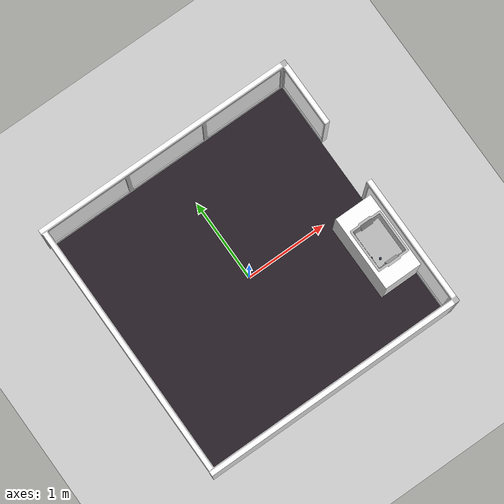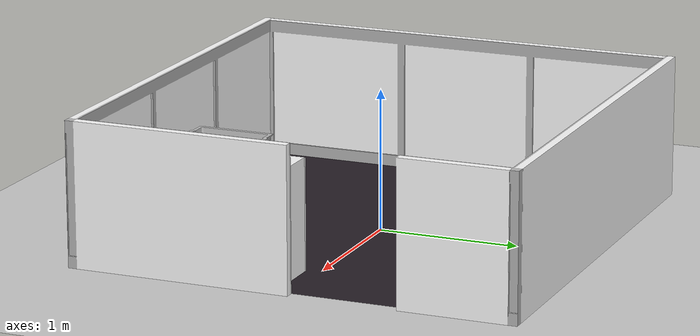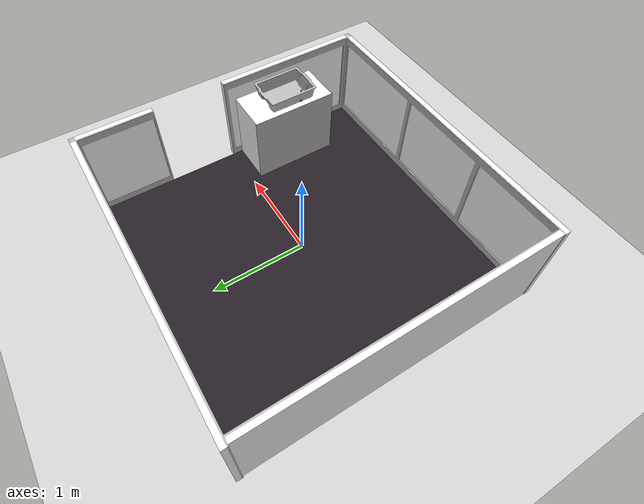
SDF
<?xml version="1.0" ?>
<sdf version="1.4">
  <world name="default">

    <include>
      <uri>model://ground_plane</uri>
      <pose>0 0 -0.005 0 0 0</pose>
    </include>

    <include>
      <uri>model://fetchit_arena</uri>
      <name>fetchit_arena1</name>
      <pose>0 0 0 0 0 0</pose>
    </include>

    <include>
      <uri>model://fetchit_table_em</uri>
      <name>fetchit_table_em1</name>
      <pose>1.28714 -0.565 0.0 0 0 -1.57</pose>
    </include>

    <include>
      <uri>model://screw_bin</uri>
      <name>screw_bin</name>
      <pose>1.273518 -0.580070 0.791994 0 0 -1.570000</pose>
    </include>

    <include>
      <uri>model://gearbox_bolt_grey</uri>
      <name>gearbox_bolt_grey1</name>
      <pose>1.19481 -0.727808 0.802789 0 0 0</pose>
    </include>

    <include>
      <uri>model://gearbox_bolt_grey</uri>
      <name>gearbox_bolt_grey2</name>
      <pose>1.11789 -0.669909 0.802789 0 0 0</pose>
    </include>

    <light name='user_point_light_0' type='point'>
      <pose frame=''>1.0 1.0 3.5 0 0 0</pose>
      <diffuse>0.7 0.7 0.7 1</diffuse>
      <specular>0.1 0.1 0.1 1</specular>
      <attenuation>
        <range>10</range>
        <constant>0.5</constant>
        <linear>0.01</linear>
        <quadratic>0.001</quadratic>
      </attenuation>
      <cast_shadows>0</cast_shadows>
      <direction>0 0 -1</direction>
    </light>

    <light name='user_point_light_1' type='point'>
      <pose frame=''>-1.0 1.0 3.5 0 0 0</pose>
      <diffuse>0.7 0.7 0.7 1</diffuse>
      <specular>0.1 0.1 0.1 1</specular>
      <attenuation>
        <range>10</range>
        <constant>0.5</constant>
        <linear>0.01</linear>
        <quadratic>0.001</quadratic>
      </attenuation>
      <cast_shadows>0</cast_shadows>
      <direction>0 0 -1</direction>
    </light>

    <light name='user_point_light_2' type='point'>
      <pose frame=''>-1.0 -1.0 3.5 0 0 0</pose>
      <diffuse>0.7 0.7 0.7 1</diffuse>
      <specular>0.1 0.1 0.1 1</specular>
      <attenuation>
        <range>10</range>
        <constant>0.5</constant>
        <linear>0.01</linear>
        <quadratic>0.001</quadratic>
      </attenuation>
      <cast_shadows>0</cast_shadows>
      <direction>0 0 -1</direction>
    </light>

    <light name='user_point_light_3' type='point'>
      <pose frame=''>1.0 -1.0 3.5 0 0 0</pose>
      <diffuse>0.7 0.7 0.7 1</diffuse>
      <specular>0.1 0.1 0.1 1</specular>
      <attenuation>
        <range>10</range>
        <constant>0.5</constant>
        <linear>0.01</linear>
        <quadratic>0.001</quadratic>
      </attenuation>
      <cast_shadows>0</cast_shadows>
      <direction>0 0 -1</direction>
    </light>

  </world>
</sdf>

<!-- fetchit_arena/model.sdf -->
<sdf version='1.4'>
  <model name="fetchit_simple_env">
      <static>1</static>
      <link name='link'>
        <visual name='visual'>
          <geometry>
            <mesh>
              <uri>model://fetchit_arena/meshes/fetchit_arena1.dae</uri>
              <scale>1 1 1</scale>
            </mesh>
          </geometry>
        </visual>
        <collision name='collision'>
          <geometry>
            <mesh>
              <uri>model://fetchit_arena/meshes/fetchit_arena1.dae</uri>
              <scale>1 1 1</scale>
            </mesh>
          </geometry>
          <surface>
            <friction>
              <ode>
                <mu>30.0</mu>
                <mu2>30.0</mu2>
              </ode>
            </friction>
            <contact>
              <ode>
                <soft_cfm>0</soft_cfm>
    	          <soft_erp>0.2</soft_erp>
    	          <kp>1e+13</kp>
    	          <kd>1</kd>
    	          <max_vel>0.01</max_vel>
    	          <min_depth>0</min_depth>
              </ode>
            </contact>
          </surface>
        </collision>
        <velocity_decay>
          <linear>0.000000</linear>
          <angular>0.000000</angular>
        </velocity_decay>
        <self_collide>0</self_collide>
        <kinematic>0</kinematic>
        <gravity>1</gravity>
      </link>
  </model>
</sdf>

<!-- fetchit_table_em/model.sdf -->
<sdf version='1.4'>
  <model name="fetchit_table_em">
      <static>1</static>
      <link name='link'>
        <inertial>
          <mass>0.0592855</mass>
          <inertia>
            <ixx>2.31818050784e-05</ixx>
            <ixy>0.000000</ixy>
            <ixz>0.000000</ixz>
            <iyy>2.31851837098e-05</iyy>
            <iyz>0.000000</iyz>
            <izz>8.88944636856e-06</izz>
          </inertia>
        </inertial>
        <collision name='collision'>
          <geometry>
            <mesh>
              <uri>model://fetchit_table_em/meshes/simple_table.stl</uri>
              <scale>1 1 1</scale>
            </mesh>
          </geometry>
          <surface>
            <friction>
              <ode>
                <mu>30.0</mu>
                <mu2>30.0</mu2>
              </ode>
            </friction>
          </surface>
        </collision>
        <visual name='visual'>
          <geometry>
            <mesh>
              <uri>model://fetchit_table_em/meshes/table_EM.dae</uri>
              <scale>1 1 1</scale>
            </mesh>
          </geometry>
        </visual>
        <velocity_decay>
          <linear>0.000000</linear>
          <angular>0.000000</angular>
        </velocity_decay>
        <self_collide>0</self_collide>
        <kinematic>0</kinematic>
        <gravity>1</gravity>
      </link>
  </model>
</sdf>

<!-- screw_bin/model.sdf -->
<sdf version='1.4'>
  <model name="screw_bin">
      <static>1</static>
      <link name='link'>
        <inertial>
          <mass>0.0189132</mass>
          <inertia>
            <ixx>3.36060179959e-06</ixx>
            <ixy>0.000000</ixy>
            <ixz>0.000000</ixz>
            <iyy>3.36060179959e-06</iyy>
            <iyz>0.000000</iyz>
            <izz>1.34975977923e-06</izz>
          </inertia>
        </inertial>
        <collision name='collision'>
          <geometry>
            <mesh>
              <uri>model://screw_bin/meshes/screw_bin.stl</uri>
              <scale>1 1 1</scale>
            </mesh>
          </geometry>
          <surface>
            <friction>
              <ode>
                <mu>30.0</mu>
                <mu2>30.0</mu2>
              </ode>
            </friction>
          </surface>
        </collision>
        <visual name='visual'>
          <geometry>
            <mesh>
              <uri>model://screw_bin/meshes/screw_bin.dae</uri>
              <scale>1 1 1</scale>
            </mesh>
          </geometry>
        </visual>
        <velocity_decay>
          <linear>0.000000</linear>
          <angular>0.000000</angular>
        </velocity_decay>
        <self_collide>0</self_collide>
        <kinematic>0</kinematic>
        <gravity>1</gravity>
      </link>
  </model>
</sdf>

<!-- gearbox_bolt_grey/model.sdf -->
<sdf version='1.4'>
  <model name="gearbox_bolt_grey">
      <static>0</static>
      <link name='link'>
        <inertial>
          <pose>0 0 0.030633 0 0 0</pose>
          <mass>0.0592855</mass>
          <inertia>
            <ixx>2.2977502034e-05</ixx>
            <ixy>0.000000</ixy>
            <ixz>0.000000</ixz>
            <iyy>2.29905352792e-05</iyy>
            <iyz>0.000000</iyz>
            <izz>8.87979175473e-06</izz>
          </inertia>
        </inertial>
        <collision name='collision'>
          <geometry>
            <mesh>
              <uri>model://gearbox_bolt_grey/meshes/gear_bolt_simple.stl</uri>
              <scale>1 1 1</scale>
            </mesh>
          </geometry>
          <surface>
            <friction>
              <ode>
                <mu>30.0</mu>
                <mu2>30.0</mu2>
              </ode>
            </friction>
          </surface>
        </collision>
        <visual name='visual'>
          <geometry>
            <mesh>
              <uri>model://gearbox_bolt_grey/meshes/screw_grey.dae</uri>
              <scale>1 1 1</scale>
            </mesh>
          </geometry>
        </visual>
        <velocity_decay>
          <linear>0.000000</linear>
          <angular>0.000000</angular>
        </velocity_decay>
        <self_collide>0</self_collide>
        <kinematic>0</kinematic>
        <gravity>1</gravity>
      </link>
  </model>
</sdf>
